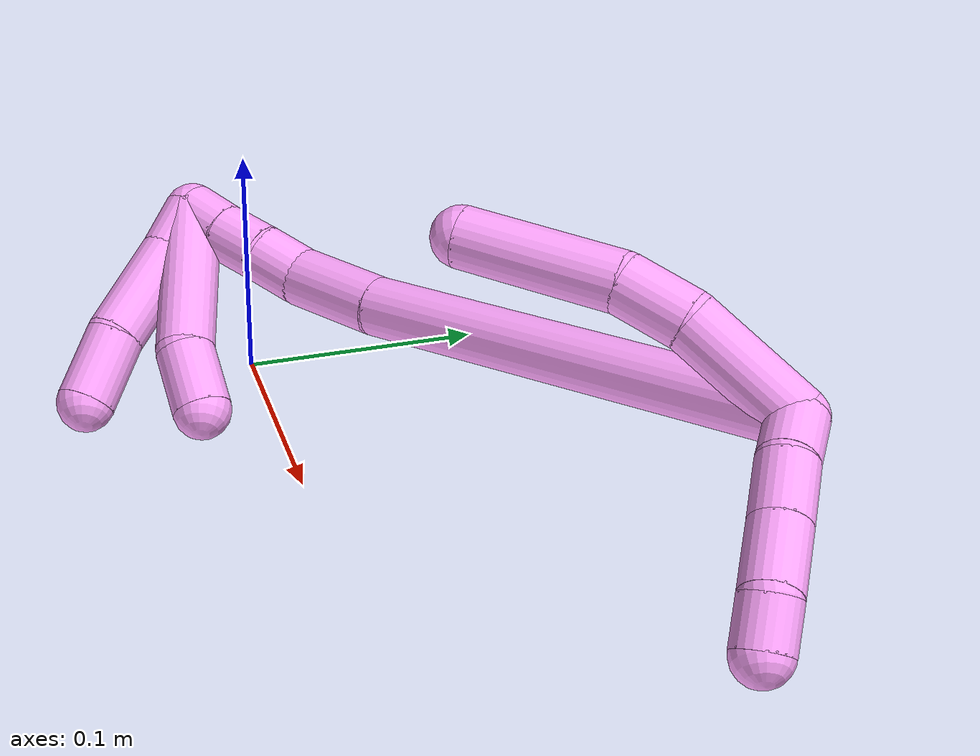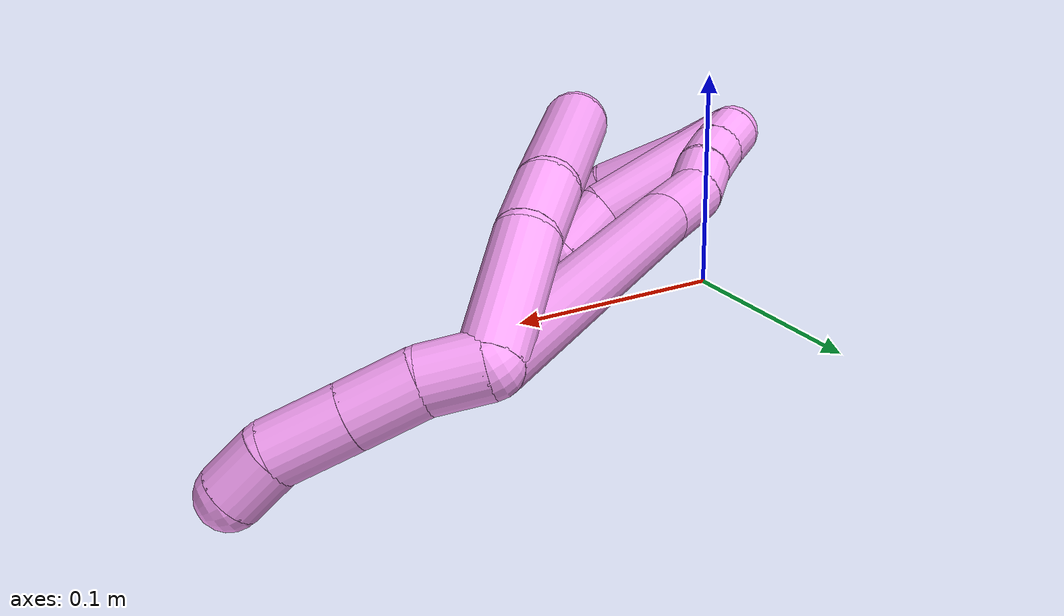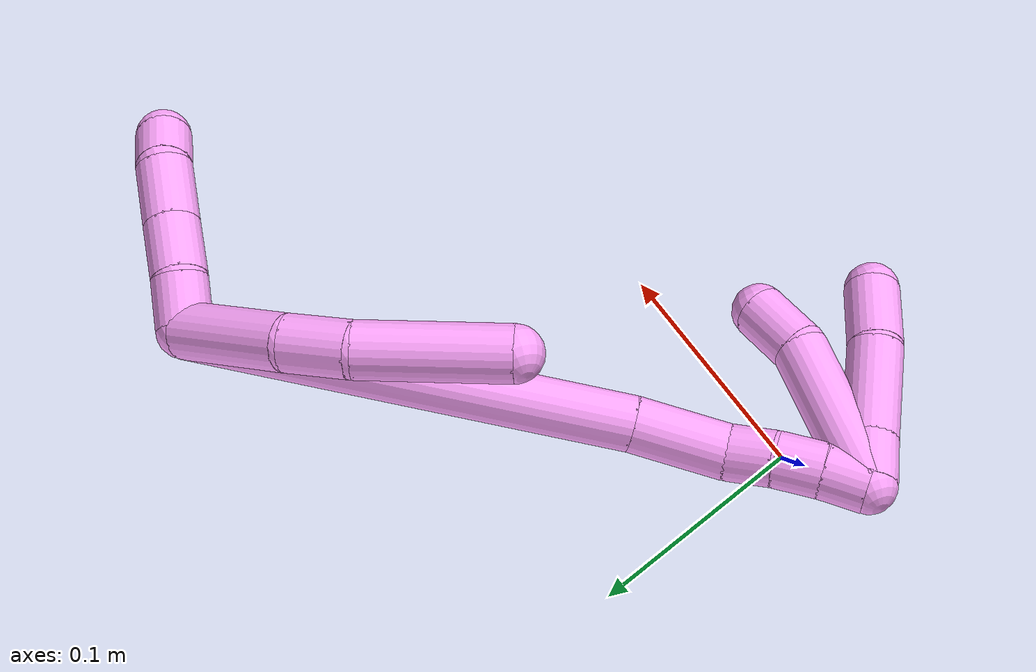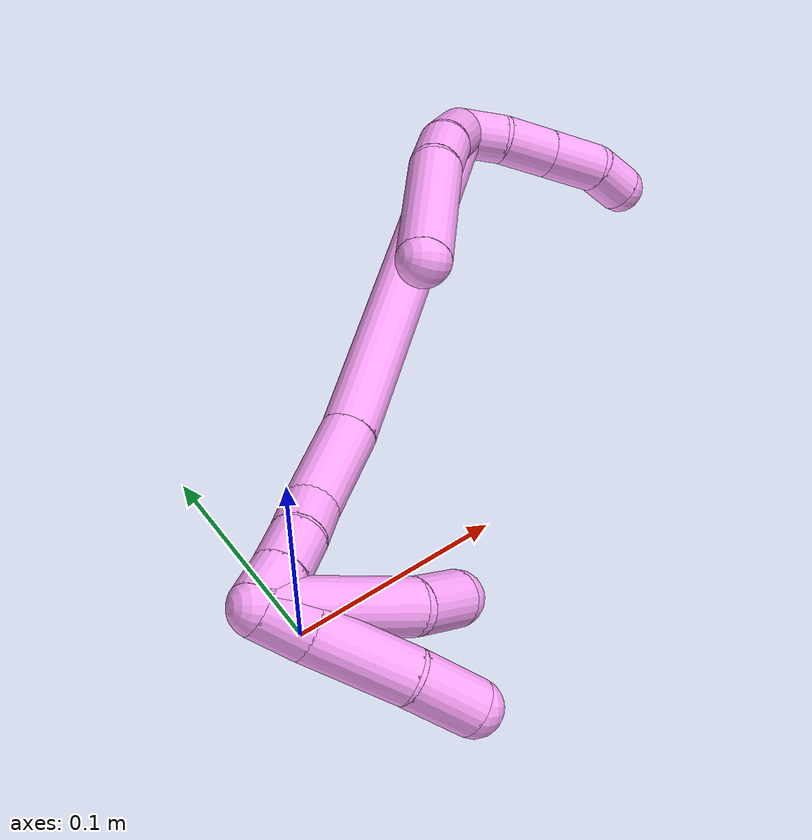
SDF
<sdf version="1.7">
 <world name="default">
  <model name="4">
   <static>0</static>
   <link name="4">
    <collision name="collision-cylinder-e_1_2_8">
     <pose>-0.017372 -0.011825 -0.016716 2.52591 -0.70356 -1.7139</pose>
     <geometry><cylinder><radius>0.0125</radius><length>0.053705</length></cylinder></geometry>
     <surface>
      <friction><ode><mu>1.16</mu><mu2>1.16</mu2><slip1>0</slip1><slip2>0</slip2></ode></friction>
      <contact><ode><kp>1e+06</kp><kd>1</kd><max_vel>0</max_vel><min_depth>0.001</min_depth></ode></contact>
     </surface>
    </collision>
    <visual name="visual-cylinder-e_1_2_8">
     <pose>-0.017372 -0.011825 -0.016716 2.52591 -0.70356 -1.7139</pose>
     <geometry><cylinder><radius>0.0125</radius><length>0.053705</length></cylinder></geometry>
     <material><ambient>1 0.65098 0.996078 1</ambient></material>
    </visual>
    <collision name="collision-cylinder-e_2_8_9">
     <pose>-0.042536 -0.033158 -0.041552 2.27757 -0.55735 -1.11082</pose>
     <geometry><cylinder><radius>0.0125</radius><length>0.029465</length></cylinder></geometry>
     <surface>
      <friction><ode><mu>1.16</mu><mu2>1.16</mu2><slip1>0</slip1><slip2>0</slip2></ode></friction>
      <contact><ode><kp>1e+06</kp><kd>1</kd><max_vel>0</max_vel><min_depth>0.001</min_depth></ode></contact>
     </surface>
    </collision>
    <visual name="visual-cylinder-e_2_8_9">
     <pose>-0.042536 -0.033158 -0.041552 2.27757 -0.55735 -1.11082</pose>
     <geometry><cylinder><radius>0.0125</radius><length>0.029465</length></cylinder></geometry>
     <material><ambient>1 0.65098 0.996078 1</ambient></material>
    </visual>
    <collision name="collision-cylinder-e_3_9_6">
     <pose>-0.064675 -0.06964 -0.063206 2.03589 -0.443746 -0.701004</pose>
     <geometry><cylinder><radius>0.0125</radius><length>0.066831</length></cylinder></geometry>
     <surface>
      <friction><ode><mu>1.16</mu><mu2>1.16</mu2><slip1>0</slip1><slip2>0</slip2></ode></friction>
      <contact><ode><kp>1e+06</kp><kd>1</kd><max_vel>0</max_vel><min_depth>0.001</min_depth></ode></contact>
     </surface>
    </collision>
    <visual name="visual-cylinder-e_3_9_6">
     <pose>-0.064675 -0.06964 -0.063206 2.03589 -0.443746 -0.701004</pose>
     <geometry><cylinder><radius>0.0125</radius><length>0.066831</length></cylinder></geometry>
     <material><ambient>1 0.65098 0.996078 1</ambient></material>
    </visual>
    <collision name="collision-cylinder-e_1_2_10">
     <pose>-0.003614 -0.001042 0.010876 0.095556 -0.319452 -0.015405</pose>
     <geometry><cylinder><radius>0.0125</radius><length>0.023016</length></cylinder></geometry>
     <surface>
      <friction><ode><mu>1.16</mu><mu2>1.16</mu2><slip1>0</slip1><slip2>0</slip2></ode></friction>
      <contact><ode><kp>1e+06</kp><kd>1</kd><max_vel>0</max_vel><min_depth>0.001</min_depth></ode></contact>
     </surface>
    </collision>
    <visual name="visual-cylinder-e_1_2_10">
     <pose>-0.003614 -0.001042 0.010876 0.095556 -0.319452 -0.015405</pose>
     <geometry><cylinder><radius>0.0125</radius><length>0.023016</length></cylinder></geometry>
     <material><ambient>1 0.65098 0.996078 1</ambient></material>
    </visual>
    <collision name="collision-cylinder-e_2_10_11">
     <pose>-0.008748 -0.003951 0.034835 0.141717 -0.114531 -0.008138</pose>
     <geometry><cylinder><radius>0.0125</radius><length>0.026604</length></cylinder></geometry>
     <surface>
      <friction><ode><mu>1.16</mu><mu2>1.16</mu2><slip1>0</slip1><slip2>0</slip2></ode></friction>
      <contact><ode><kp>1e+06</kp><kd>1</kd><max_vel>0</max_vel><min_depth>0.001</min_depth></ode></contact>
     </surface>
    </collision>
    <visual name="visual-cylinder-e_2_10_11">
     <pose>-0.008748 -0.003951 0.034835 0.141717 -0.114531 -0.008138</pose>
     <geometry><cylinder><radius>0.0125</radius><length>0.026604</length></cylinder></geometry>
     <material><ambient>1 0.65098 0.996078 1</ambient></material>
    </visual>
    <collision name="collision-cylinder-e_3_11_12">
     <pose>-0.012049 -0.007967 0.062352 0.147767 -0.121411 -0.008998</pose>
     <geometry><cylinder><radius>0.0125</radius><length>0.029403</length></cylinder></geometry>
     <surface>
      <friction><ode><mu>1.16</mu><mu2>1.16</mu2><slip1>0</slip1><slip2>0</slip2></ode></friction>
      <contact><ode><kp>1e+06</kp><kd>1</kd><max_vel>0</max_vel><min_depth>0.001</min_depth></ode></contact>
     </surface>
    </collision>
    <visual name="visual-cylinder-e_3_11_12">
     <pose>-0.012049 -0.007967 0.062352 0.147767 -0.121411 -0.008998</pose>
     <geometry><cylinder><radius>0.0125</radius><length>0.029403</length></cylinder></geometry>
     <material><ambient>1 0.65098 0.996078 1</ambient></material>
    </visual>
    <collision name="collision-cylinder-e_4_12_5">
     <pose>-0.012095 -0.013567 0.086537 0.340288 0.16619 0.028616</pose>
     <geometry><cylinder><radius>0.0125</radius><length>0.020976</length></cylinder></geometry>
     <surface>
      <friction><ode><mu>1.16</mu><mu2>1.16</mu2><slip1>0</slip1><slip2>0</slip2></ode></friction>
      <contact><ode><kp>1e+06</kp><kd>1</kd><max_vel>0</max_vel><min_depth>0.001</min_depth></ode></contact>
     </surface>
    </collision>
    <visual name="visual-cylinder-e_4_12_5">
     <pose>-0.012095 -0.013567 0.086537 0.340288 0.16619 0.028616</pose>
     <geometry><cylinder><radius>0.0125</radius><length>0.020976</length></cylinder></geometry>
     <material><ambient>1 0.65098 0.996078 1</ambient></material>
    </visual>
    <collision name="collision-cylinder-e_1_2_13">
     <pose>-0.020295 -0.083354 -0.046273 2.07757 -0.209743 -0.353902</pose>
     <geometry><cylinder><radius>0.0125</radius><length>0.194945</length></cylinder></geometry>
     <surface>
      <friction><ode><mu>1.16</mu><mu2>1.16</mu2><slip1>0</slip1><slip2>0</slip2></ode></friction>
      <contact><ode><kp>1e+06</kp><kd>1</kd><max_vel>0</max_vel><min_depth>0.001</min_depth></ode></contact>
     </surface>
    </collision>
    <visual name="visual-cylinder-e_1_2_13">
     <pose>-0.020295 -0.083354 -0.046273 2.07757 -0.209743 -0.353902</pose>
     <geometry><cylinder><radius>0.0125</radius><length>0.194945</length></cylinder></geometry>
     <material><ambient>1 0.65098 0.996078 1</ambient></material>
    </visual>
    <collision name="collision-cylinder-e_2_13_14">
     <pose>-0.044774 -0.183859 -0.104498 2.17941 -0.197573 -0.375264</pose>
     <geometry><cylinder><radius>0.0125</radius><length>0.04264</length></cylinder></geometry>
     <surface>
      <friction><ode><mu>1.16</mu><mu2>1.16</mu2><slip1>0</slip1><slip2>0</slip2></ode></friction>
      <contact><ode><kp>1e+06</kp><kd>1</kd><max_vel>0</max_vel><min_depth>0.001</min_depth></ode></contact>
     </surface>
    </collision>
    <visual name="visual-cylinder-e_2_13_14">
     <pose>-0.044774 -0.183859 -0.104498 2.17941 -0.197573 -0.375264</pose>
     <geometry><cylinder><radius>0.0125</radius><length>0.04264</length></cylinder></geometry>
     <material><ambient>1 0.65098 0.996078 1</ambient></material>
    </visual>
    <collision name="collision-cylinder-e_3_14_15">
     <pose>-0.05413 -0.207977 -0.122407 2.27827 -0.513657 -1.03635</pose>
     <geometry><cylinder><radius>0.0125</radius><length>0.021048</length></cylinder></geometry>
     <surface>
      <friction><ode><mu>1.16</mu><mu2>1.16</mu2><slip1>0</slip1><slip2>0</slip2></ode></friction>
      <contact><ode><kp>1e+06</kp><kd>1</kd><max_vel>0</max_vel><min_depth>0.001</min_depth></ode></contact>
     </surface>
    </collision>
    <visual name="visual-cylinder-e_3_14_15">
     <pose>-0.05413 -0.207977 -0.122407 2.27827 -0.513657 -1.03635</pose>
     <geometry><cylinder><radius>0.0125</radius><length>0.021048</length></cylinder></geometry>
     <material><ambient>1 0.65098 0.996078 1</ambient></material>
    </visual>
    <collision name="collision-cylinder-e_4_15_16">
     <pose>-0.063118 -0.222564 -0.13475 2.26825 -0.36649 -0.755967</pose>
     <geometry><cylinder><radius>0.0125</radius><length>0.021302</length></cylinder></geometry>
     <surface>
      <friction><ode><mu>1.16</mu><mu2>1.16</mu2><slip1>0</slip1><slip2>0</slip2></ode></friction>
      <contact><ode><kp>1e+06</kp><kd>1</kd><max_vel>0</max_vel><min_depth>0.001</min_depth></ode></contact>
     </surface>
    </collision>
    <visual name="visual-cylinder-e_4_15_16">
     <pose>-0.063118 -0.222564 -0.13475 2.26825 -0.36649 -0.755967</pose>
     <geometry><cylinder><radius>0.0125</radius><length>0.021302</length></cylinder></geometry>
     <material><ambient>1 0.65098 0.996078 1</ambient></material>
    </visual>
    <collision name="collision-cylinder-e_5_16_1">
     <pose>-0.070077 -0.237083 -0.14771 2.33216 -0.318601 -0.717648</pose>
     <geometry><cylinder><radius>0.0125</radius><length>0.020066</length></cylinder></geometry>
     <surface>
      <friction><ode><mu>1.16</mu><mu2>1.16</mu2><slip1>0</slip1><slip2>0</slip2></ode></friction>
      <contact><ode><kp>1e+06</kp><kd>1</kd><max_vel>0</max_vel><min_depth>0.001</min_depth></ode></contact>
     </surface>
    </collision>
    <visual name="visual-cylinder-e_5_16_1">
     <pose>-0.070077 -0.237083 -0.14771 2.33216 -0.318601 -0.717648</pose>
     <geometry><cylinder><radius>0.0125</radius><length>0.020066</length></cylinder></geometry>
     <material><ambient>1 0.65098 0.996078 1</ambient></material>
    </visual>
    <collision name="collision-cylinder-e_1_1_17">
     <pose>-0.074722 -0.248752 -0.144168 0.440795 -0.13355 -0.029962</pose>
     <geometry><cylinder><radius>0.0125</radius><length>0.02257</length></cylinder></geometry>
     <surface>
      <friction><ode><mu>1.16</mu><mu2>1.16</mu2><slip1>0</slip1><slip2>0</slip2></ode></friction>
      <contact><ode><kp>1e+06</kp><kd>1</kd><max_vel>0</max_vel><min_depth>0.001</min_depth></ode></contact>
     </surface>
    </collision>
    <visual name="visual-cylinder-e_1_1_17">
     <pose>-0.074722 -0.248752 -0.144168 0.440795 -0.13355 -0.029962</pose>
     <geometry><cylinder><radius>0.0125</radius><length>0.02257</length></cylinder></geometry>
     <material><ambient>1 0.65098 0.996078 1</ambient></material>
    </visual>
    <collision name="collision-cylinder-e_2_17_18">
     <pose>-0.081392 -0.262565 -0.113707 0.418162 -0.228028 -0.048585</pose>
     <geometry><cylinder><radius>0.0125</radius><length>0.045711</length></cylinder></geometry>
     <surface>
      <friction><ode><mu>1.16</mu><mu2>1.16</mu2><slip1>0</slip1><slip2>0</slip2></ode></friction>
      <contact><ode><kp>1e+06</kp><kd>1</kd><max_vel>0</max_vel><min_depth>0.001</min_depth></ode></contact>
     </surface>
    </collision>
    <visual name="visual-cylinder-e_2_17_18">
     <pose>-0.081392 -0.262565 -0.113707 0.418162 -0.228028 -0.048585</pose>
     <geometry><cylinder><radius>0.0125</radius><length>0.045711</length></cylinder></geometry>
     <material><ambient>1 0.65098 0.996078 1</ambient></material>
    </visual>
    <collision name="collision-cylinder-e_3_18_4">
     <pose>-0.087183 -0.277933 -0.078832 0.410718 -0.039388 -0.008205</pose>
     <geometry><cylinder><radius>0.0125</radius><length>0.031719</length></cylinder></geometry>
     <surface>
      <friction><ode><mu>1.16</mu><mu2>1.16</mu2><slip1>0</slip1><slip2>0</slip2></ode></friction>
      <contact><ode><kp>1e+06</kp><kd>1</kd><max_vel>0</max_vel><min_depth>0.001</min_depth></ode></contact>
     </surface>
    </collision>
    <visual name="visual-cylinder-e_3_18_4">
     <pose>-0.087183 -0.277933 -0.078832 0.410718 -0.039388 -0.008205</pose>
     <geometry><cylinder><radius>0.0125</radius><length>0.031719</length></cylinder></geometry>
     <material><ambient>1 0.65098 0.996078 1</ambient></material>
    </visual>
    <collision name="collision-cylinder-e_1_1_19">
     <pose>-0.073199 -0.243587 -0.118365 -0.010952 0.000586 -3e-06</pose>
     <geometry><cylinder><radius>0.0125</radius><length>0.071841</length></cylinder></geometry>
     <surface>
      <friction><ode><mu>1.16</mu><mu2>1.16</mu2><slip1>0</slip1><slip2>0</slip2></ode></friction>
      <contact><ode><kp>1e+06</kp><kd>1</kd><max_vel>0</max_vel><min_depth>0.001</min_depth></ode></contact>
     </surface>
    </collision>
    <visual name="visual-cylinder-e_1_1_19">
     <pose>-0.073199 -0.243587 -0.118365 -0.010952 0.000586 -3e-06</pose>
     <geometry><cylinder><radius>0.0125</radius><length>0.071841</length></cylinder></geometry>
     <material><ambient>1 0.65098 0.996078 1</ambient></material>
    </visual>
    <collision name="collision-cylinder-e_2_19_3">
     <pose>-0.06905 -0.241129 -0.069145 -0.153948 0.297554 -0.023119</pose>
     <geometry><cylinder><radius>0.0125</radius><length>0.028159</length></cylinder></geometry>
     <surface>
      <friction><ode><mu>1.16</mu><mu2>1.16</mu2><slip1>0</slip1><slip2>0</slip2></ode></friction>
      <contact><ode><kp>1e+06</kp><kd>1</kd><max_vel>0</max_vel><min_depth>0.001</min_depth></ode></contact>
     </surface>
    </collision>
    <visual name="visual-cylinder-e_2_19_3">
     <pose>-0.06905 -0.241129 -0.069145 -0.153948 0.297554 -0.023119</pose>
     <geometry><cylinder><radius>0.0125</radius><length>0.028159</length></cylinder></geometry>
     <material><ambient>1 0.65098 0.996078 1</ambient></material>
    </visual>
    <collision name="collision-sphere-3">
     <pose>-0.064922 -0.239065 -0.055843 0 -0 0</pose>
     <geometry><sphere><radius>0.0125</radius></sphere></geometry>
     <surface>
      <friction><ode><mu>1.16</mu><mu2>1.16</mu2><slip1>0</slip1><slip2>0</slip2></ode></friction>
      <contact><ode><kp>1e+06</kp><kd>1</kd><max_vel>0</max_vel><min_depth>0.001</min_depth></ode></contact>
     </surface>
    </collision>
    <visual name="visual-sphere-3">
     <pose>-0.064922 -0.239065 -0.055843 0 -0 0</pose>
     <geometry><sphere><radius>0.0125</radius></sphere></geometry>
     <material><ambient>1 0.65098 0.996078 1</ambient></material>
    </visual>
    <collision name="collision-sphere-19">
     <pose>-0.073178 -0.243193 -0.082446 0 -0 0</pose>
     <geometry><sphere><radius>0.0125</radius></sphere></geometry>
     <surface>
      <friction><ode><mu>1.16</mu><mu2>1.16</mu2><slip1>0</slip1><slip2>0</slip2></ode></friction>
      <contact><ode><kp>1e+06</kp><kd>1</kd><max_vel>0</max_vel><min_depth>0.001</min_depth></ode></contact>
     </surface>
    </collision>
    <visual name="visual-sphere-19">
     <pose>-0.073178 -0.243193 -0.082446 0 -0 0</pose>
     <geometry><sphere><radius>0.0125</radius></sphere></geometry>
     <material><ambient>1 0.65098 0.996078 1</ambient></material>
    </visual>
    <collision name="collision-sphere-11">
     <pose>-0.010269 -0.005818 0.047917 0 -0 0</pose>
     <geometry><sphere><radius>0.0125</radius></sphere></geometry>
     <surface>
      <friction><ode><mu>1.16</mu><mu2>1.16</mu2><slip1>0</slip1><slip2>0</slip2></ode></friction>
      <contact><ode><kp>1e+06</kp><kd>1</kd><max_vel>0</max_vel><min_depth>0.001</min_depth></ode></contact>
     </surface>
    </collision>
    <visual name="visual-sphere-11">
     <pose>-0.010269 -0.005818 0.047917 0 -0 0</pose>
     <geometry><sphere><radius>0.0125</radius></sphere></geometry>
     <material><ambient>1 0.65098 0.996078 1</ambient></material>
    </visual>
    <collision name="collision-sphere-10">
     <pose>-0.007228 -0.002085 0.021752 0 -0 0</pose>
     <geometry><sphere><radius>0.0125</radius></sphere></geometry>
     <surface>
      <friction><ode><mu>1.16</mu><mu2>1.16</mu2><slip1>0</slip1><slip2>0</slip2></ode></friction>
      <contact><ode><kp>1e+06</kp><kd>1</kd><max_vel>0</max_vel><min_depth>0.001</min_depth></ode></contact>
     </surface>
    </collision>
    <visual name="visual-sphere-10">
     <pose>-0.007228 -0.002085 0.021752 0 -0 0</pose>
     <geometry><sphere><radius>0.0125</radius></sphere></geometry>
     <material><ambient>1 0.65098 0.996078 1</ambient></material>
    </visual>
    <collision name="collision-sphere-6">
     <pose>-0.079021 -0.096613 -0.076742 0 -0 0</pose>
     <geometry><sphere><radius>0.0125</radius></sphere></geometry>
     <surface>
      <friction><ode><mu>1.16</mu><mu2>1.16</mu2><slip1>0</slip1><slip2>0</slip2></ode></friction>
      <contact><ode><kp>1e+06</kp><kd>1</kd><max_vel>0</max_vel><min_depth>0.001</min_depth></ode></contact>
     </surface>
    </collision>
    <visual name="visual-sphere-6">
     <pose>-0.079021 -0.096613 -0.076742 0 -0 0</pose>
     <geometry><sphere><radius>0.0125</radius></sphere></geometry>
     <material><ambient>1 0.65098 0.996078 1</ambient></material>
    </visual>
    <collision name="collision-sphere-9">
     <pose>-0.050329 -0.042666 -0.049671 0 -0 0</pose>
     <geometry><sphere><radius>0.0125</radius></sphere></geometry>
     <surface>
      <friction><ode><mu>1.16</mu><mu2>1.16</mu2><slip1>0</slip1><slip2>0</slip2></ode></friction>
      <contact><ode><kp>1e+06</kp><kd>1</kd><max_vel>0</max_vel><min_depth>0.001</min_depth></ode></contact>
     </surface>
    </collision>
    <visual name="visual-sphere-9">
     <pose>-0.050329 -0.042666 -0.049671 0 -0 0</pose>
     <geometry><sphere><radius>0.0125</radius></sphere></geometry>
     <material><ambient>1 0.65098 0.996078 1</ambient></material>
    </visual>
    <collision name="collision-sphere-2">
     <geometry><sphere><radius>0.0125</radius></sphere></geometry>
     <surface>
      <friction><ode><mu>1.16</mu><mu2>1.16</mu2><slip1>0</slip1><slip2>0</slip2></ode></friction>
      <contact><ode><kp>1e+06</kp><kd>1</kd><max_vel>0</max_vel><min_depth>0.001</min_depth></ode></contact>
     </surface>
    </collision>
    <visual name="visual-sphere-2">
     <geometry><sphere><radius>0.0125</radius></sphere></geometry>
     <material><ambient>1 0.65098 0.996078 1</ambient></material>
    </visual>
    <collision name="collision-sphere-8">
     <pose>-0.034744 -0.023651 -0.033433 0 -0 0</pose>
     <geometry><sphere><radius>0.0125</radius></sphere></geometry>
     <surface>
      <friction><ode><mu>1.16</mu><mu2>1.16</mu2><slip1>0</slip1><slip2>0</slip2></ode></friction>
      <contact><ode><kp>1e+06</kp><kd>1</kd><max_vel>0</max_vel><min_depth>0.001</min_depth></ode></contact>
     </surface>
    </collision>
    <visual name="visual-sphere-8">
     <pose>-0.034744 -0.023651 -0.033433 0 -0 0</pose>
     <geometry><sphere><radius>0.0125</radius></sphere></geometry>
     <material><ambient>1 0.65098 0.996078 1</ambient></material>
    </visual>
    <collision name="collision-sphere-12">
     <pose>-0.01383 -0.010115 0.076786 0 -0 0</pose>
     <geometry><sphere><radius>0.0125</radius></sphere></geometry>
     <surface>
      <friction><ode><mu>1.16</mu><mu2>1.16</mu2><slip1>0</slip1><slip2>0</slip2></ode></friction>
      <contact><ode><kp>1e+06</kp><kd>1</kd><max_vel>0</max_vel><min_depth>0.001</min_depth></ode></contact>
     </surface>
    </collision>
    <visual name="visual-sphere-12">
     <pose>-0.01383 -0.010115 0.076786 0 -0 0</pose>
     <geometry><sphere><radius>0.0125</radius></sphere></geometry>
     <material><ambient>1 0.65098 0.996078 1</ambient></material>
    </visual>
    <collision name="collision-sphere-5">
     <pose>-0.01036 -0.01702 0.096287 0 -0 0</pose>
     <geometry><sphere><radius>0.0125</radius></sphere></geometry>
     <surface>
      <friction><ode><mu>1.16</mu><mu2>1.16</mu2><slip1>0</slip1><slip2>0</slip2></ode></friction>
      <contact><ode><kp>1e+06</kp><kd>1</kd><max_vel>0</max_vel><min_depth>0.001</min_depth></ode></contact>
     </surface>
    </collision>
    <visual name="visual-sphere-5">
     <pose>-0.01036 -0.01702 0.096287 0 -0 0</pose>
     <geometry><sphere><radius>0.0125</radius></sphere></geometry>
     <material><ambient>1 0.65098 0.996078 1</ambient></material>
    </visual>
    <collision name="collision-sphere-13">
     <pose>-0.040589 -0.166708 -0.092545 0 -0 0</pose>
     <geometry><sphere><radius>0.0125</radius></sphere></geometry>
     <surface>
      <friction><ode><mu>1.16</mu><mu2>1.16</mu2><slip1>0</slip1><slip2>0</slip2></ode></friction>
      <contact><ode><kp>1e+06</kp><kd>1</kd><max_vel>0</max_vel><min_depth>0.001</min_depth></ode></contact>
     </surface>
    </collision>
    <visual name="visual-sphere-13">
     <pose>-0.040589 -0.166708 -0.092545 0 -0 0</pose>
     <geometry><sphere><radius>0.0125</radius></sphere></geometry>
     <material><ambient>1 0.65098 0.996078 1</ambient></material>
    </visual>
    <collision name="collision-sphere-14">
     <pose>-0.048959 -0.201011 -0.11645 0 -0 0</pose>
     <geometry><sphere><radius>0.0125</radius></sphere></geometry>
     <surface>
      <friction><ode><mu>1.16</mu><mu2>1.16</mu2><slip1>0</slip1><slip2>0</slip2></ode></friction>
      <contact><ode><kp>1e+06</kp><kd>1</kd><max_vel>0</max_vel><min_depth>0.001</min_depth></ode></contact>
     </surface>
    </collision>
    <visual name="visual-sphere-14">
     <pose>-0.048959 -0.201011 -0.11645 0 -0 0</pose>
     <geometry><sphere><radius>0.0125</radius></sphere></geometry>
     <material><ambient>1 0.65098 0.996078 1</ambient></material>
    </visual>
    <collision name="collision-sphere-15">
     <pose>-0.059301 -0.214943 -0.128364 0 -0 0</pose>
     <geometry><sphere><radius>0.0125</radius></sphere></geometry>
     <surface>
      <friction><ode><mu>1.16</mu><mu2>1.16</mu2><slip1>0</slip1><slip2>0</slip2></ode></friction>
      <contact><ode><kp>1e+06</kp><kd>1</kd><max_vel>0</max_vel><min_depth>0.001</min_depth></ode></contact>
     </surface>
    </collision>
    <visual name="visual-sphere-15">
     <pose>-0.059301 -0.214943 -0.128364 0 -0 0</pose>
     <geometry><sphere><radius>0.0125</radius></sphere></geometry>
     <material><ambient>1 0.65098 0.996078 1</ambient></material>
    </visual>
    <collision name="collision-sphere-16">
     <pose>-0.066934 -0.230186 -0.141136 0 -0 0</pose>
     <geometry><sphere><radius>0.0125</radius></sphere></geometry>
     <surface>
      <friction><ode><mu>1.16</mu><mu2>1.16</mu2><slip1>0</slip1><slip2>0</slip2></ode></friction>
      <contact><ode><kp>1e+06</kp><kd>1</kd><max_vel>0</max_vel><min_depth>0.001</min_depth></ode></contact>
     </surface>
    </collision>
    <visual name="visual-sphere-16">
     <pose>-0.066934 -0.230186 -0.141136 0 -0 0</pose>
     <geometry><sphere><radius>0.0125</radius></sphere></geometry>
     <material><ambient>1 0.65098 0.996078 1</ambient></material>
    </visual>
    <collision name="collision-sphere-1">
     <pose>-0.07322 -0.24398 -0.154283 0 -0 0</pose>
     <geometry><sphere><radius>0.0125</radius></sphere></geometry>
     <surface>
      <friction><ode><mu>1.16</mu><mu2>1.16</mu2><slip1>0</slip1><slip2>0</slip2></ode></friction>
      <contact><ode><kp>1e+06</kp><kd>1</kd><max_vel>0</max_vel><min_depth>0.001</min_depth></ode></contact>
     </surface>
    </collision>
    <visual name="visual-sphere-1">
     <pose>-0.07322 -0.24398 -0.154283 0 -0 0</pose>
     <geometry><sphere><radius>0.0125</radius></sphere></geometry>
     <material><ambient>1 0.65098 0.996078 1</ambient></material>
    </visual>
    <collision name="collision-sphere-18">
     <pose>-0.086558 -0.271606 -0.093361 0 -0 0</pose>
     <geometry><sphere><radius>0.0125</radius></sphere></geometry>
     <surface>
      <friction><ode><mu>1.16</mu><mu2>1.16</mu2><slip1>0</slip1><slip2>0</slip2></ode></friction>
      <contact><ode><kp>1e+06</kp><kd>1</kd><max_vel>0</max_vel><min_depth>0.001</min_depth></ode></contact>
     </surface>
    </collision>
    <visual name="visual-sphere-18">
     <pose>-0.086558 -0.271606 -0.093361 0 -0 0</pose>
     <geometry><sphere><radius>0.0125</radius></sphere></geometry>
     <material><ambient>1 0.65098 0.996078 1</ambient></material>
    </visual>
    <collision name="collision-sphere-17">
     <pose>-0.076225 -0.253524 -0.134053 0 -0 0</pose>
     <geometry><sphere><radius>0.0125</radius></sphere></geometry>
     <surface>
      <friction><ode><mu>1.16</mu><mu2>1.16</mu2><slip1>0</slip1><slip2>0</slip2></ode></friction>
      <contact><ode><kp>1e+06</kp><kd>1</kd><max_vel>0</max_vel><min_depth>0.001</min_depth></ode></contact>
     </surface>
    </collision>
    <visual name="visual-sphere-17">
     <pose>-0.076225 -0.253524 -0.134053 0 -0 0</pose>
     <geometry><sphere><radius>0.0125</radius></sphere></geometry>
     <material><ambient>1 0.65098 0.996078 1</ambient></material>
    </visual>
    <collision name="collision-sphere-4">
     <pose>-0.087807 -0.284261 -0.064303 0 -0 0</pose>
     <geometry><sphere><radius>0.0125</radius></sphere></geometry>
     <surface>
      <friction><ode><mu>1.16</mu><mu2>1.16</mu2><slip1>0</slip1><slip2>0</slip2></ode></friction>
      <contact><ode><kp>1e+06</kp><kd>1</kd><max_vel>0</max_vel><min_depth>0.001</min_depth></ode></contact>
     </surface>
    </collision>
    <visual name="visual-sphere-4">
     <pose>-0.087807 -0.284261 -0.064303 0 -0 0</pose>
     <geometry><sphere><radius>0.0125</radius></sphere></geometry>
     <material><ambient>1 0.65098 0.996078 1</ambient></material>
    </visual>
    <inertial>
     <pose>-0.043418 -0.127467 -0.059747 0 -0 0</pose>
     <mass>0.75</mass>
     <inertia>
      <ixx>0.000402</ixx>
      <ixy>0</ixy>
      <ixz>0</ixz>
      <iyy>-0.000464</iyy>
      <iyz>0</iyz>
      <izz>0.000746</izz>
     </inertia>
    </inertial>
   </link>
   <pose>0.207048 0.165859 0.068994 2.29009 0.79998 1.85907</pose>
  </model>
 </world>
</sdf>
